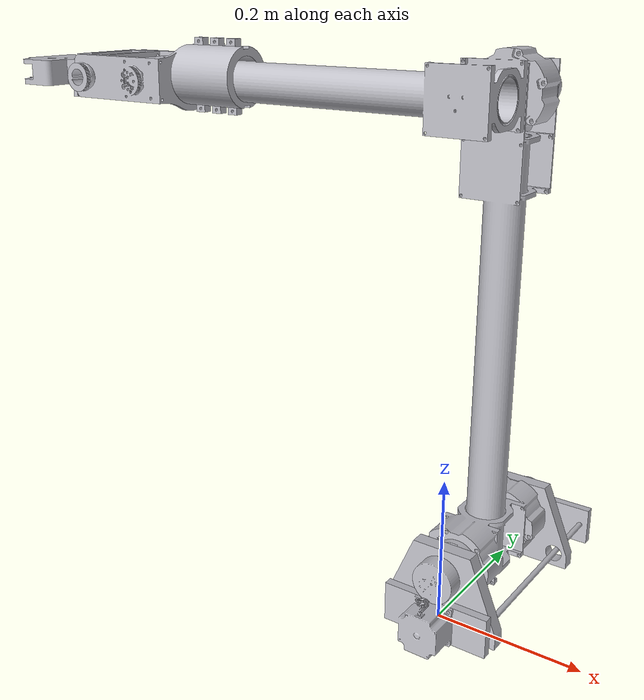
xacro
<?xml version="1.0" ?>
<robot name="Untitled" xmlns:xacro="http://www.ros.org/wiki/xacro">

<xacro:include filename="$(find armDescription)/urdf/materials.xacro" />
<xacro:include filename="$(find armDescription)/urdf/arm.trans" />
<xacro:include filename="$(find armDescription)/urdf/arm.gazebo" />

<link name="world"/>

<link name="base_link">
  <inertial>
    <origin xyz="0.0 0.0 0.0" rpy="0 0 0"/>
    <mass value="10.0"/>
    <inertia ixx="0.0" iyy="0.0" izz="0.0" ixy="0.0" iyz="0.0" ixz="0.0"/>
  </inertial>
  <visual>
    <origin xyz="0 0 0" rpy="0 0 0"/>
    <geometry>
      <mesh filename="package://armDescription/meshes/base_link.stl" scale="0.001 0.001 0.001"/>
    </geometry>
    <material name="silver"/>
  </visual>
  <collision>
    <origin xyz="0 0 0" rpy="0 0 0"/>
    <geometry>
      <mesh filename="package://armDescription/meshes/base_link.stl" scale="0.001 0.001 0.001"/>
    </geometry>
  </collision>
</link>

<link name="Component11_v2_v1_2">
  <inertial>
    <origin xyz="1.8921691480829895e-05 0.010000475562951694 -0.030093010683727557" rpy="0 0 0"/>
    <mass value="0.6511813481870774"/>
    <inertia ixx="0.000787" iyy="0.001936" izz="0.001192" ixy="-0.0" iyz="0.0" ixz="-0.0"/>
  </inertial>
  <visual>
    <origin xyz="0.0 -0.258412 -0.06045" rpy="0 0 0"/>
    <geometry>
      <mesh filename="package://armDescription/meshes/Component11_v2_v1_2.stl" scale="0.001 0.001 0.001"/>
    </geometry>
    <material name="silver"/>
  </visual>
  <collision>
    <origin xyz="0.0 -0.258412 -0.06045" rpy="0 0 0"/>
    <geometry>
      <mesh filename="package://armDescription/meshes/Component11_v2_v1_2.stl" scale="0.001 0.001 0.001"/>
    </geometry>
  </collision>
</link>

<link name="Component11_v2_v1_1">
  <inertial>
    <origin xyz="1.8921691563516906e-05 0.030662475562955253 0.0303569893162949" rpy="0 0 0"/>
    <mass value="0.6511813481870774"/>
    <inertia ixx="0.000787" iyy="0.001936" izz="0.001192" ixy="-0.0" iyz="0.0" ixz="-0.0"/>
  </inertial>
  <visual>
    <origin xyz="-0.0 0.0 -0.0" rpy="0 0 0"/>
    <geometry>
      <mesh filename="package://armDescription/meshes/Component11_v2_v1_1.stl" scale="0.001 0.001 0.001"/>
    </geometry>
    <material name="silver"/>
  </visual>
  <collision>
    <origin xyz="-0.0 0.0 -0.0" rpy="0 0 0"/>
    <geometry>
      <mesh filename="package://armDescription/meshes/Component11_v2_v1_1.stl" scale="0.001 0.001 0.001"/>
    </geometry>
  </collision>
</link>

<link name="first_joint_v1_1">
  <inertial>
    <origin xyz="-5.5424616382365724e-05 0.10869016545308727 0.09859943916607464" rpy="0 0 0"/>
    <mass value="7.668966838655255"/>
    <inertia ixx="0.348378" iyy="0.304315" izz="0.052364" ixy="0.0" iyz="0.000701" ixz="-4.7e-05"/>
  </inertial>
  <visual>
    <origin xyz="0.0 -0.040662 -0.06045" rpy="0 0 0"/>
    <geometry>
      <mesh filename="package://armDescription/meshes/first_joint_v1_1.stl" scale="0.001 0.001 0.001"/>
    </geometry>
    <material name="silver"/>
  </visual>
  <collision>
    <origin xyz="0.0 -0.040662 -0.06045" rpy="0 0 0"/>
    <geometry>
      <mesh filename="package://armDescription/meshes/first_joint_v1_1.stl" scale="0.001 0.001 0.001"/>
    </geometry>
  </collision>
</link>

<link name="Component97_v3_v1_1">
  <inertial>
    <origin xyz="-0.2949645623180494 -0.11132392103123785 0.0010935807492056249" rpy="0 0 0"/>
    <mass value="10.449071038064233"/>
    <inertia ixx="0.04701" iyy="0.503223" izz="0.540856" ixy="-0.094196" iyz="0.000376" ixz="0.000413"/>
  </inertial>
  <visual>
    <origin xyz="-9e-06 -0.193987 -0.683004" rpy="0 0 0"/>
    <geometry>
      <mesh filename="package://armDescription/meshes/Component97_v3_v1_1.stl" scale="0.001 0.001 0.001"/>
    </geometry>
    <material name="silver"/>
  </visual>
  <collision>
    <origin xyz="-9e-06 -0.193987 -0.683004" rpy="0 0 0"/>
    <geometry>
      <mesh filename="package://armDescription/meshes/Component97_v3_v1_1.stl" scale="0.001 0.001 0.001"/>
    </geometry>
  </collision>
</link>

<link name="Component100_v2_v1_1">
  <inertial>
    <origin xyz="5.975475148023435e-08 -0.05482886286349597 -2.4228927919534016e-07" rpy="0 0 0"/>
    <mass value="1.5955074498669641"/>
    <inertia ixx="0.003774" iyy="0.001022" izz="0.003938" ixy="0.0" iyz="-0.0" ixz="-0.0"/>
  </inertial>
  <visual>
    <origin xyz="0.581816 -0.107058 -0.682374" rpy="0 0 0"/>
    <geometry>
      <mesh filename="package://armDescription/meshes/Component100_v2_v1_1.stl" scale="0.001 0.001 0.001"/>
    </geometry>
    <material name="silver"/>
  </visual>
  <collision>
    <origin xyz="0.581816 -0.107058 -0.682374" rpy="0 0 0"/>
    <geometry>
      <mesh filename="package://armDescription/meshes/Component100_v2_v1_1.stl" scale="0.001 0.001 0.001"/>
    </geometry>
  </collision>
</link>

<link name="Component17_v2_v1_1">
  <inertial>
    <origin xyz="-0.06485757998822483 0.00026239061268388403 -0.0018640716306065341" rpy="0 0 0"/>
    <mass value="2.10392857250335"/>
    <inertia ixx="0.002428" iyy="0.002748" izz="0.004466" ixy="9e-06" iyz="0.0" ixz="7.6e-05"/>
  </inertial>
  <visual>
    <origin xyz="0.610816 -0.052092 -0.682342" rpy="0 0 0"/>
    <geometry>
      <mesh filename="package://armDescription/meshes/Component17_v2_v1_1.stl" scale="0.001 0.001 0.001"/>
    </geometry>
    <material name="silver"/>
  </visual>
  <collision>
    <origin xyz="0.610816 -0.052092 -0.682342" rpy="0 0 0"/>
    <geometry>
      <mesh filename="package://armDescription/meshes/Component17_v2_v1_1.stl" scale="0.001 0.001 0.001"/>
    </geometry>
  </collision>
</link>

<joint name="world_fixed" type="fixed">
  <parent link="world"/>
  <child link="base_link"/>
  <origin xyz="0 0 0" rpy="0 0 0"/>
</joint>

<joint name="Revolute 6" type="continuous">
  <origin xyz="0.0 0.21775 0.0" rpy="0 0 0"/>
  <parent link="first_joint_v1_1"/>
  <child link="Component11_v2_v1_2"/>
  <axis xyz="-0.0 -1.0 -0.0"/>
</joint>

<joint name="slider7" type="prismatic">
  <origin xyz="0.0 0.0 0.0" rpy="0 0 0"/>
  <parent link="base_link"/>
  <child link="Component11_v2_v1_1"/>
  <axis xyz="0.0 1.0 0.0"/>
  <limit upper="0.81" lower="0.0" effort="100" velocity="100"/>
</joint>

<joint name="revolute8" type="continuous">
  <origin xyz="-0.0 0.040662 0.06045" rpy="0 0 0"/>
  <parent link="Component11_v2_v1_1"/>
  <child link="first_joint_v1_1"/>
  <axis xyz="0.0 -1.0 -0.0"/>
</joint>

<joint name="revolute9" type="continuous">
  <origin xyz="9e-06 0.153325 0.622554" rpy="0 0 0"/>
  <parent link="first_joint_v1_1"/>
  <child link="Component97_v3_v1_1"/>
  <axis xyz="0.0 1.0 0.0"/>
</joint>

<joint name="Revolute 10" type="continuous">
  <origin xyz="-0.581825 -0.086929 -0.00063" rpy="0 0 0"/>
  <parent link="Component97_v3_v1_1"/>
  <child link="Component100_v2_v1_1"/>
  <axis xyz="-0.0 1.0 -0.0"/>
</joint>

<joint name="Revolute 11" type="continuous">
  <origin xyz="-0.029 -0.054966 -3.2e-05" rpy="0 0 0"/>
  <parent link="Component100_v2_v1_1"/>
  <child link="Component17_v2_v1_1"/>
  <axis xyz="0.999999 0.0 0.001084"/>
</joint>

</robot>

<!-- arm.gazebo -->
<robot name="Untitled" xmlns:xacro="http://www.ros.org/wiki/xacro">

<xacro:arg name="controller_params" default=""/>
<xacro:property name="body_color" value="Gazebo/Silver" />

<gazebo>
  <plugin
    filename="ign_ros2_control-system"
    name="ign_ros2_control::IgnitionROS2ControlPlugin">
    <parameters>$(arg controller_params)</parameters>
    <ros2_control>GazeboSystem</ros2_control>
  </plugin>
</gazebo>

<ros2_control name="GazeboSystem" type="system">
  <hardware>
    <plugin>ign_ros2_control/IgnitionSystem</plugin>
  </hardware>
  <joint name="slider7">
    <command_interface name="velocity"/>
    <state_interface name="position"/>
    <state_interface name="velocity"/>
  </joint>
  <joint name="revolute8">
    <command_interface name="velocity"/>
    <state_interface name="position"/>
    <state_interface name="velocity"/>
  </joint>
  <joint name="revolute9">
    <command_interface name="velocity"/>
    <state_interface name="position"/>
    <state_interface name="velocity"/>
  </joint>
</ros2_control>

<gazebo reference="base_link">
  <material>${body_color}</material>
  <mu1>0.2</mu1>
  <mu2>0.2</mu2>
  <self_collide>true</self_collide>
  <gravity>true</gravity>
</gazebo>

<gazebo reference="Component11_v2_v1_2">
  <material>${body_color}</material>
  <mu1>0.2</mu1>
  <mu2>0.2</mu2>
  <self_collide>true</self_collide>
</gazebo>

<gazebo reference="Component11_v2_v1_1">
  <material>${body_color}</material>
  <mu1>0.2</mu1>
  <mu2>0.2</mu2>
  <self_collide>true</self_collide>
</gazebo>

<gazebo reference="first_joint_v1_1">
  <material>${body_color}</material>
  <mu1>0.2</mu1>
  <mu2>0.2</mu2>
  <self_collide>true</self_collide>
</gazebo>

<gazebo reference="Component97_v3_v1_1">
  <material>${body_color}</material>
  <mu1>0.2</mu1>
  <mu2>0.2</mu2>
  <self_collide>true</self_collide>
</gazebo>

<gazebo reference="Component100_v2_v1_1">
  <material>${body_color}</material>
  <mu1>0.2</mu1>
  <mu2>0.2</mu2>
  <self_collide>true</self_collide>
</gazebo>

<gazebo reference="Component17_v2_v1_1">
  <material>${body_color}</material>
  <mu1>0.2</mu1>
  <mu2>0.2</mu2>
  <self_collide>true</self_collide>
</gazebo>

</robot>
